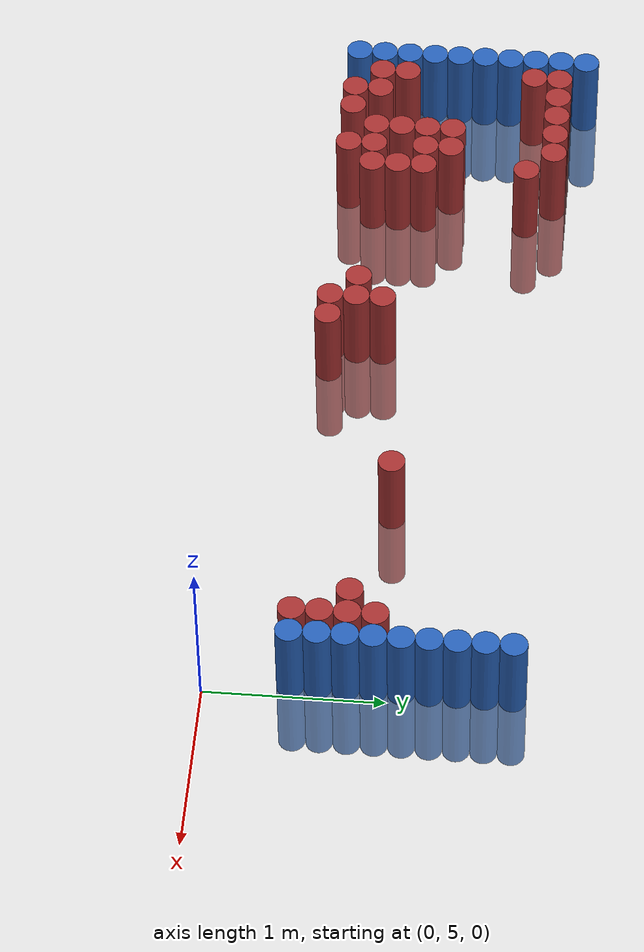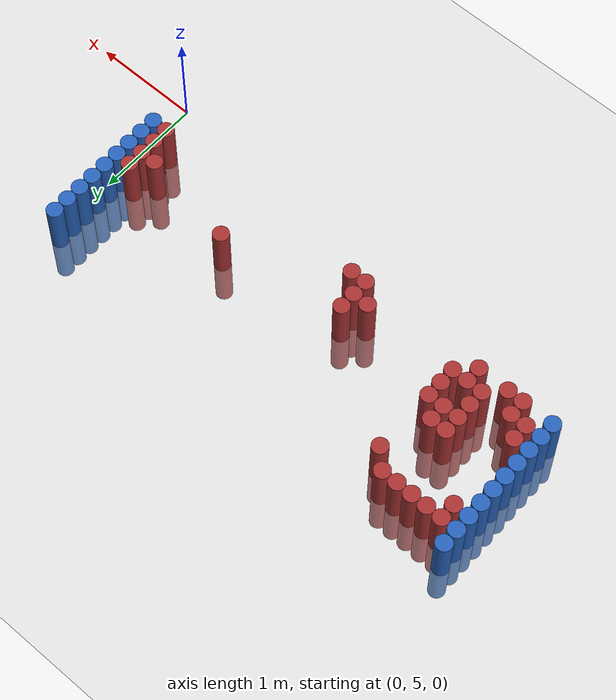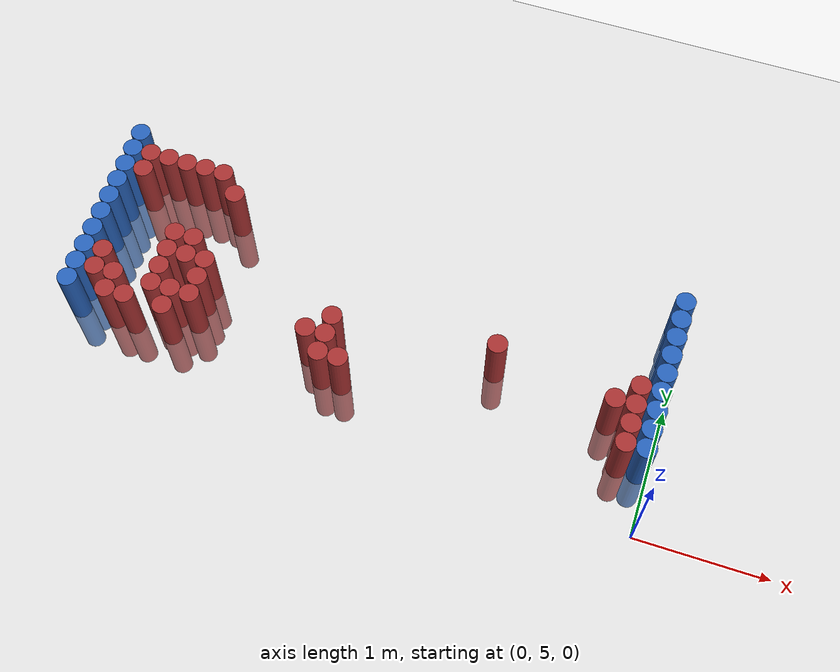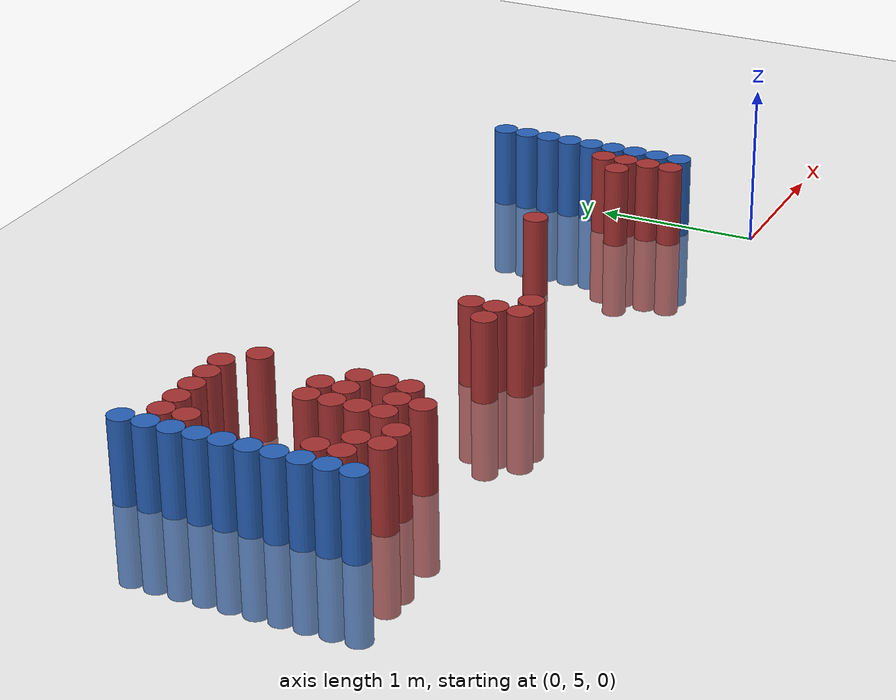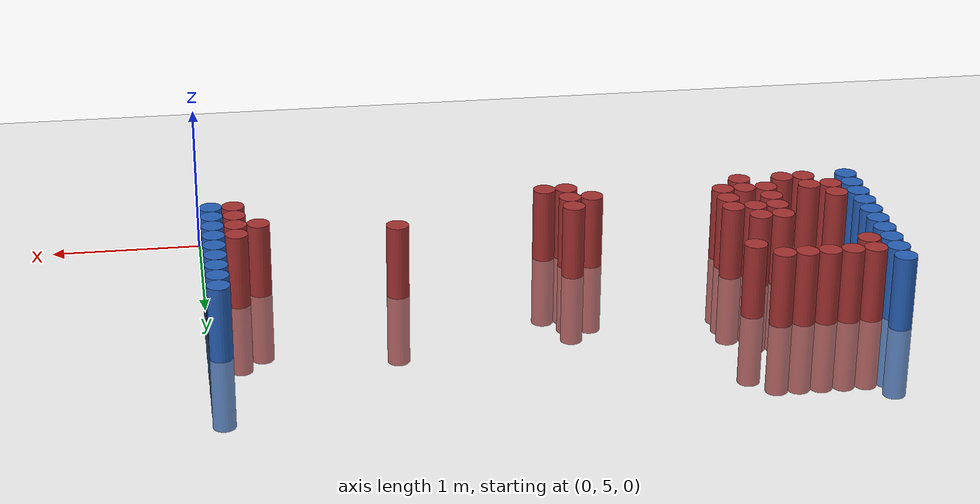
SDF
<sdf version="1.6">
 <world name="default">
  <model name="ground_plane">
   <static>1</static>
   <link name="link">
    <collision name="collision">
     <geometry><plane><normal>0 0 1</normal><size>100 100</size></plane></geometry>
     <surface><friction><ode><mu>100</mu><mu2>50</mu2></ode></friction></surface>
    </collision>
    <visual name="visual">
     <cast_shadows>0</cast_shadows>
     <geometry><plane><normal>0 0 1</normal><size>100 100</size></plane></geometry>
     <material>
      <script><uri>file://media/materials/scripts/gazebo.material</uri><name>Gazebo/Grey</name></script>
     </material>
    </visual>
   </link>
  </model>
  <model name="unit_cylinder_98">
   <static>1</static>
   <pose>-4.425000 5.475000 0.000000 0.000000 0.000000 0.000000</pose>
   <link name="link">
    <inertial>
     <mass>1</mass>
     <inertia><ixx>0.145833</ixx><ixy>0</ixy><ixz>0</ixz><iyy>0.145833</iyy><iyz>0</iyz><izz>0.125</izz></inertia>
    </inertial>
    <collision name="collision">
     <geometry><cylinder><radius>0.075000</radius><length>1</length></cylinder></geometry>
    </collision>
    <visual name="visual">
     <geometry><cylinder><radius>0.075000</radius><length>1</length></cylinder></geometry>
     <material>
      <ambient>0.152000 0.379000 0.720000 1</ambient>
      <diffuse>0.152000 0.379000 0.720000 1</diffuse>
     </material>
     <material>
      <script><name>Gazebo/Grey</name><uri>file://media/materials/scripts/gazebo.material</uri></script>
     </material>
    </visual>
   </link>
  </model>
  <model name="unit_cylinder_99">
   <static>1</static>
   <pose>-4.425000 5.625000 0.000000 0.000000 0.000000 0.000000</pose>
   <link name="link">
    <inertial>
     <mass>1</mass>
     <inertia><ixx>0.145833</ixx><ixy>0</ixy><ixz>0</ixz><iyy>0.145833</iyy><iyz>0</iyz><izz>0.125</izz></inertia>
    </inertial>
    <collision name="collision">
     <geometry><cylinder><radius>0.075000</radius><length>1</length></cylinder></geometry>
    </collision>
    <visual name="visual">
     <geometry><cylinder><radius>0.075000</radius><length>1</length></cylinder></geometry>
     <material>
      <ambient>0.152000 0.379000 0.720000 1</ambient>
      <diffuse>0.152000 0.379000 0.720000 1</diffuse>
     </material>
     <material>
      <script><name>Gazebo/Grey</name><uri>file://media/materials/scripts/gazebo.material</uri></script>
     </material>
    </visual>
   </link>
  </model>
  <model name="unit_cylinder_100">
   <static>1</static>
   <pose>-4.425000 5.775000 0.000000 0.000000 0.000000 0.000000</pose>
   <link name="link">
    <inertial>
     <mass>1</mass>
     <inertia><ixx>0.145833</ixx><ixy>0</ixy><ixz>0</ixz><iyy>0.145833</iyy><iyz>0</iyz><izz>0.125</izz></inertia>
    </inertial>
    <collision name="collision">
     <geometry><cylinder><radius>0.075000</radius><length>1</length></cylinder></geometry>
    </collision>
    <visual name="visual">
     <geometry><cylinder><radius>0.075000</radius><length>1</length></cylinder></geometry>
     <material>
      <ambient>0.152000 0.379000 0.720000 1</ambient>
      <diffuse>0.152000 0.379000 0.720000 1</diffuse>
     </material>
     <material>
      <script><name>Gazebo/Grey</name><uri>file://media/materials/scripts/gazebo.material</uri></script>
     </material>
    </visual>
   </link>
  </model>
  <model name="unit_cylinder_101">
   <static>1</static>
   <pose>-4.425000 5.925000 0.000000 0.000000 0.000000 0.000000</pose>
   <link name="link">
    <inertial>
     <mass>1</mass>
     <inertia><ixx>0.145833</ixx><ixy>0</ixy><ixz>0</ixz><iyy>0.145833</iyy><iyz>0</iyz><izz>0.125</izz></inertia>
    </inertial>
    <collision name="collision">
     <geometry><cylinder><radius>0.075000</radius><length>1</length></cylinder></geometry>
    </collision>
    <visual name="visual">
     <geometry><cylinder><radius>0.075000</radius><length>1</length></cylinder></geometry>
     <material>
      <ambient>0.152000 0.379000 0.720000 1</ambient>
      <diffuse>0.152000 0.379000 0.720000 1</diffuse>
     </material>
     <material>
      <script><name>Gazebo/Grey</name><uri>file://media/materials/scripts/gazebo.material</uri></script>
     </material>
    </visual>
   </link>
  </model>
  <model name="unit_cylinder_102">
   <static>1</static>
   <pose>-4.425000 6.075000 0.000000 0.000000 0.000000 0.000000</pose>
   <link name="link">
    <inertial>
     <mass>1</mass>
     <inertia><ixx>0.145833</ixx><ixy>0</ixy><ixz>0</ixz><iyy>0.145833</iyy><iyz>0</iyz><izz>0.125</izz></inertia>
    </inertial>
    <collision name="collision">
     <geometry><cylinder><radius>0.075000</radius><length>1</length></cylinder></geometry>
    </collision>
    <visual name="visual">
     <geometry><cylinder><radius>0.075000</radius><length>1</length></cylinder></geometry>
     <material>
      <ambient>0.152000 0.379000 0.720000 1</ambient>
      <diffuse>0.152000 0.379000 0.720000 1</diffuse>
     </material>
     <material>
      <script><name>Gazebo/Grey</name><uri>file://media/materials/scripts/gazebo.material</uri></script>
     </material>
    </visual>
   </link>
  </model>
  <model name="unit_cylinder_103">
   <static>1</static>
   <pose>-4.425000 6.225000 0.000000 0.000000 0.000000 0.000000</pose>
   <link name="link">
    <inertial>
     <mass>1</mass>
     <inertia><ixx>0.145833</ixx><ixy>0</ixy><ixz>0</ixz><iyy>0.145833</iyy><iyz>0</iyz><izz>0.125</izz></inertia>
    </inertial>
    <collision name="collision">
     <geometry><cylinder><radius>0.075000</radius><length>1</length></cylinder></geometry>
    </collision>
    <visual name="visual">
     <geometry><cylinder><radius>0.075000</radius><length>1</length></cylinder></geometry>
     <material>
      <ambient>0.152000 0.379000 0.720000 1</ambient>
      <diffuse>0.152000 0.379000 0.720000 1</diffuse>
     </material>
     <material>
      <script><name>Gazebo/Grey</name><uri>file://media/materials/scripts/gazebo.material</uri></script>
     </material>
    </visual>
   </link>
  </model>
  <model name="unit_cylinder_104">
   <static>1</static>
   <pose>-4.425000 6.375000 0.000000 0.000000 0.000000 0.000000</pose>
   <link name="link">
    <inertial>
     <mass>1</mass>
     <inertia><ixx>0.145833</ixx><ixy>0</ixy><ixz>0</ixz><iyy>0.145833</iyy><iyz>0</iyz><izz>0.125</izz></inertia>
    </inertial>
    <collision name="collision">
     <geometry><cylinder><radius>0.075000</radius><length>1</length></cylinder></geometry>
    </collision>
    <visual name="visual">
     <geometry><cylinder><radius>0.075000</radius><length>1</length></cylinder></geometry>
     <material>
      <ambient>0.152000 0.379000 0.720000 1</ambient>
      <diffuse>0.152000 0.379000 0.720000 1</diffuse>
     </material>
     <material>
      <script><name>Gazebo/Grey</name><uri>file://media/materials/scripts/gazebo.material</uri></script>
     </material>
    </visual>
   </link>
  </model>
  <model name="unit_cylinder_105">
   <static>1</static>
   <pose>-4.425000 6.525000 0.000000 0.000000 0.000000 0.000000</pose>
   <link name="link">
    <inertial>
     <mass>1</mass>
     <inertia><ixx>0.145833</ixx><ixy>0</ixy><ixz>0</ixz><iyy>0.145833</iyy><iyz>0</iyz><izz>0.125</izz></inertia>
    </inertial>
    <collision name="collision">
     <geometry><cylinder><radius>0.075000</radius><length>1</length></cylinder></geometry>
    </collision>
    <visual name="visual">
     <geometry><cylinder><radius>0.075000</radius><length>1</length></cylinder></geometry>
     <material>
      <ambient>0.152000 0.379000 0.720000 1</ambient>
      <diffuse>0.152000 0.379000 0.720000 1</diffuse>
     </material>
     <material>
      <script><name>Gazebo/Grey</name><uri>file://media/materials/scripts/gazebo.material</uri></script>
     </material>
    </visual>
   </link>
  </model>
  <model name="unit_cylinder_106">
   <static>1</static>
   <pose>-4.425000 6.675000 0.000000 0.000000 0.000000 0.000000</pose>
   <link name="link">
    <inertial>
     <mass>1</mass>
     <inertia><ixx>0.145833</ixx><ixy>0</ixy><ixz>0</ixz><iyy>0.145833</iyy><iyz>0</iyz><izz>0.125</izz></inertia>
    </inertial>
    <collision name="collision">
     <geometry><cylinder><radius>0.075000</radius><length>1</length></cylinder></geometry>
    </collision>
    <visual name="visual">
     <geometry><cylinder><radius>0.075000</radius><length>1</length></cylinder></geometry>
     <material>
      <ambient>0.152000 0.379000 0.720000 1</ambient>
      <diffuse>0.152000 0.379000 0.720000 1</diffuse>
     </material>
     <material>
      <script><name>Gazebo/Grey</name><uri>file://media/materials/scripts/gazebo.material</uri></script>
     </material>
    </visual>
   </link>
  </model>
  <model name="unit_cylinder_107">
   <static>1</static>
   <pose>-4.425000 6.825000 0.000000 0.000000 0.000000 0.000000</pose>
   <link name="link">
    <inertial>
     <mass>1</mass>
     <inertia><ixx>0.145833</ixx><ixy>0</ixy><ixz>0</ixz><iyy>0.145833</iyy><iyz>0</iyz><izz>0.125</izz></inertia>
    </inertial>
    <collision name="collision">
     <geometry><cylinder><radius>0.075000</radius><length>1</length></cylinder></geometry>
    </collision>
    <visual name="visual">
     <geometry><cylinder><radius>0.075000</radius><length>1</length></cylinder></geometry>
     <material>
      <ambient>0.152000 0.379000 0.720000 1</ambient>
      <diffuse>0.152000 0.379000 0.720000 1</diffuse>
     </material>
     <material>
      <script><name>Gazebo/Grey</name><uri>file://media/materials/scripts/gazebo.material</uri></script>
     </material>
    </visual>
   </link>
  </model>
  <model name="unit_cylinder_128">
   <static>1</static>
   <pose>-4.275000 5.625000 0.000000 0.000000 0.000000 0.000000</pose>
   <link name="link">
    <inertial>
     <mass>1</mass>
     <inertia><ixx>0.145833</ixx><ixy>0</ixy><ixz>0</ixz><iyy>0.145833</iyy><iyz>0</iyz><izz>0.125</izz></inertia>
    </inertial>
    <collision name="collision">
     <geometry><cylinder><radius>0.075000</radius><length>1</length></cylinder></geometry>
    </collision>
    <visual name="visual">
     <geometry><cylinder><radius>0.075000</radius><length>1</length></cylinder></geometry>
     <material>
      <ambient>0.648000 0.192000 0.192000 1</ambient>
      <diffuse>0.648000 0.192000 0.192000 1</diffuse>
     </material>
     <material>
      <script><name>Gazebo/Grey</name><uri>file://media/materials/scripts/gazebo.material</uri></script>
     </material>
    </visual>
   </link>
  </model>
  <model name="unit_cylinder_129">
   <static>1</static>
   <pose>-4.275000 5.775000 0.000000 0.000000 0.000000 0.000000</pose>
   <link name="link">
    <inertial>
     <mass>1</mass>
     <inertia><ixx>0.145833</ixx><ixy>0</ixy><ixz>0</ixz><iyy>0.145833</iyy><iyz>0</iyz><izz>0.125</izz></inertia>
    </inertial>
    <collision name="collision">
     <geometry><cylinder><radius>0.075000</radius><length>1</length></cylinder></geometry>
    </collision>
    <visual name="visual">
     <geometry><cylinder><radius>0.075000</radius><length>1</length></cylinder></geometry>
     <material>
      <ambient>0.648000 0.192000 0.192000 1</ambient>
      <diffuse>0.648000 0.192000 0.192000 1</diffuse>
     </material>
     <material>
      <script><name>Gazebo/Grey</name><uri>file://media/materials/scripts/gazebo.material</uri></script>
     </material>
    </visual>
   </link>
  </model>
  <model name="unit_cylinder_130">
   <static>1</static>
   <pose>-4.275000 6.525000 0.000000 0.000000 0.000000 0.000000</pose>
   <link name="link">
    <inertial>
     <mass>1</mass>
     <inertia><ixx>0.145833</ixx><ixy>0</ixy><ixz>0</ixz><iyy>0.145833</iyy><iyz>0</iyz><izz>0.125</izz></inertia>
    </inertial>
    <collision name="collision">
     <geometry><cylinder><radius>0.075000</radius><length>1</length></cylinder></geometry>
    </collision>
    <visual name="visual">
     <geometry><cylinder><radius>0.075000</radius><length>1</length></cylinder></geometry>
     <material>
      <ambient>0.648000 0.192000 0.192000 1</ambient>
      <diffuse>0.648000 0.192000 0.192000 1</diffuse>
     </material>
     <material>
      <script><name>Gazebo/Grey</name><uri>file://media/materials/scripts/gazebo.material</uri></script>
     </material>
    </visual>
   </link>
  </model>
  <model name="unit_cylinder_131">
   <static>1</static>
   <pose>-4.275000 6.675000 0.000000 0.000000 0.000000 0.000000</pose>
   <link name="link">
    <inertial>
     <mass>1</mass>
     <inertia><ixx>0.145833</ixx><ixy>0</ixy><ixz>0</ixz><iyy>0.145833</iyy><iyz>0</iyz><izz>0.125</izz></inertia>
    </inertial>
    <collision name="collision">
     <geometry><cylinder><radius>0.075000</radius><length>1</length></cylinder></geometry>
    </collision>
    <visual name="visual">
     <geometry><cylinder><radius>0.075000</radius><length>1</length></cylinder></geometry>
     <material>
      <ambient>0.648000 0.192000 0.192000 1</ambient>
      <diffuse>0.648000 0.192000 0.192000 1</diffuse>
     </material>
     <material>
      <script><name>Gazebo/Grey</name><uri>file://media/materials/scripts/gazebo.material</uri></script>
     </material>
    </visual>
   </link>
  </model>
  <model name="unit_cylinder_143">
   <static>1</static>
   <pose>-4.125000 5.475000 0.000000 0.000000 0.000000 0.000000</pose>
   <link name="link">
    <inertial>
     <mass>1</mass>
     <inertia><ixx>0.145833</ixx><ixy>0</ixy><ixz>0</ixz><iyy>0.145833</iyy><iyz>0</iyz><izz>0.125</izz></inertia>
    </inertial>
    <collision name="collision">
     <geometry><cylinder><radius>0.075000</radius><length>1</length></cylinder></geometry>
    </collision>
    <visual name="visual">
     <geometry><cylinder><radius>0.075000</radius><length>1</length></cylinder></geometry>
     <material>
      <ambient>0.648000 0.192000 0.192000 1</ambient>
      <diffuse>0.648000 0.192000 0.192000 1</diffuse>
     </material>
     <material>
      <script><name>Gazebo/Grey</name><uri>file://media/materials/scripts/gazebo.material</uri></script>
     </material>
    </visual>
   </link>
  </model>
  <model name="unit_cylinder_144">
   <static>1</static>
   <pose>-4.125000 5.625000 0.000000 0.000000 0.000000 0.000000</pose>
   <link name="link">
    <inertial>
     <mass>1</mass>
     <inertia><ixx>0.145833</ixx><ixy>0</ixy><ixz>0</ixz><iyy>0.145833</iyy><iyz>0</iyz><izz>0.125</izz></inertia>
    </inertial>
    <collision name="collision">
     <geometry><cylinder><radius>0.075000</radius><length>1</length></cylinder></geometry>
    </collision>
    <visual name="visual">
     <geometry><cylinder><radius>0.075000</radius><length>1</length></cylinder></geometry>
     <material>
      <ambient>0.648000 0.192000 0.192000 1</ambient>
      <diffuse>0.648000 0.192000 0.192000 1</diffuse>
     </material>
     <material>
      <script><name>Gazebo/Grey</name><uri>file://media/materials/scripts/gazebo.material</uri></script>
     </material>
    </visual>
   </link>
  </model>
  <model name="unit_cylinder_145">
   <static>1</static>
   <pose>-4.125000 6.675000 0.000000 0.000000 0.000000 0.000000</pose>
   <link name="link">
    <inertial>
     <mass>1</mass>
     <inertia><ixx>0.145833</ixx><ixy>0</ixy><ixz>0</ixz><iyy>0.145833</iyy><iyz>0</iyz><izz>0.125</izz></inertia>
    </inertial>
    <collision name="collision">
     <geometry><cylinder><radius>0.075000</radius><length>1</length></cylinder></geometry>
    </collision>
    <visual name="visual">
     <geometry><cylinder><radius>0.075000</radius><length>1</length></cylinder></geometry>
     <material>
      <ambient>0.648000 0.192000 0.192000 1</ambient>
      <diffuse>0.648000 0.192000 0.192000 1</diffuse>
     </material>
     <material>
      <script><name>Gazebo/Grey</name><uri>file://media/materials/scripts/gazebo.material</uri></script>
     </material>
    </visual>
   </link>
  </model>
  <model name="unit_cylinder_153">
   <static>1</static>
   <pose>-3.975000 5.475000 0.000000 0.000000 0.000000 0.000000</pose>
   <link name="link">
    <inertial>
     <mass>1</mass>
     <inertia><ixx>0.145833</ixx><ixy>0</ixy><ixz>0</ixz><iyy>0.145833</iyy><iyz>0</iyz><izz>0.125</izz></inertia>
    </inertial>
    <collision name="collision">
     <geometry><cylinder><radius>0.075000</radius><length>1</length></cylinder></geometry>
    </collision>
    <visual name="visual">
     <geometry><cylinder><radius>0.075000</radius><length>1</length></cylinder></geometry>
     <material>
      <ambient>0.648000 0.192000 0.192000 1</ambient>
      <diffuse>0.648000 0.192000 0.192000 1</diffuse>
     </material>
     <material>
      <script><name>Gazebo/Grey</name><uri>file://media/materials/scripts/gazebo.material</uri></script>
     </material>
    </visual>
   </link>
  </model>
  <model name="unit_cylinder_154">
   <static>1</static>
   <pose>-3.975000 6.675000 0.000000 0.000000 0.000000 0.000000</pose>
   <link name="link">
    <inertial>
     <mass>1</mass>
     <inertia><ixx>0.145833</ixx><ixy>0</ixy><ixz>0</ixz><iyy>0.145833</iyy><iyz>0</iyz><izz>0.125</izz></inertia>
    </inertial>
    <collision name="collision">
     <geometry><cylinder><radius>0.075000</radius><length>1</length></cylinder></geometry>
    </collision>
    <visual name="visual">
     <geometry><cylinder><radius>0.075000</radius><length>1</length></cylinder></geometry>
     <material>
      <ambient>0.648000 0.192000 0.192000 1</ambient>
      <diffuse>0.648000 0.192000 0.192000 1</diffuse>
     </material>
     <material>
      <script><name>Gazebo/Grey</name><uri>file://media/materials/scripts/gazebo.material</uri></script>
     </material>
    </visual>
   </link>
  </model>
  <model name="unit_cylinder_163">
   <static>1</static>
   <pose>-3.825000 5.625000 0.000000 0.000000 0.000000 0.000000</pose>
   <link name="link">
    <inertial>
     <mass>1</mass>
     <inertia><ixx>0.145833</ixx><ixy>0</ixy><ixz>0</ixz><iyy>0.145833</iyy><iyz>0</iyz><izz>0.125</izz></inertia>
    </inertial>
    <collision name="collision">
     <geometry><cylinder><radius>0.075000</radius><length>1</length></cylinder></geometry>
    </collision>
    <visual name="visual">
     <geometry><cylinder><radius>0.075000</radius><length>1</length></cylinder></geometry>
     <material>
      <ambient>0.648000 0.192000 0.192000 1</ambient>
      <diffuse>0.648000 0.192000 0.192000 1</diffuse>
     </material>
     <material>
      <script><name>Gazebo/Grey</name><uri>file://media/materials/scripts/gazebo.material</uri></script>
     </material>
    </visual>
   </link>
  </model>
  <model name="unit_cylinder_164">
   <static>1</static>
   <pose>-3.825000 5.775000 0.000000 0.000000 0.000000 0.000000</pose>
   <link name="link">
    <inertial>
     <mass>1</mass>
     <inertia><ixx>0.145833</ixx><ixy>0</ixy><ixz>0</ixz><iyy>0.145833</iyy><iyz>0</iyz><izz>0.125</izz></inertia>
    </inertial>
    <collision name="collision">
     <geometry><cylinder><radius>0.075000</radius><length>1</length></cylinder></geometry>
    </collision>
    <visual name="visual">
     <geometry><cylinder><radius>0.075000</radius><length>1</length></cylinder></geometry>
     <material>
      <ambient>0.648000 0.192000 0.192000 1</ambient>
      <diffuse>0.648000 0.192000 0.192000 1</diffuse>
     </material>
     <material>
      <script><name>Gazebo/Grey</name><uri>file://media/materials/scripts/gazebo.material</uri></script>
     </material>
    </visual>
   </link>
  </model>
  <model name="unit_cylinder_165">
   <static>1</static>
   <pose>-3.825000 5.925000 0.000000 0.000000 0.000000 0.000000</pose>
   <link name="link">
    <inertial>
     <mass>1</mass>
     <inertia><ixx>0.145833</ixx><ixy>0</ixy><ixz>0</ixz><iyy>0.145833</iyy><iyz>0</iyz><izz>0.125</izz></inertia>
    </inertial>
    <collision name="collision">
     <geometry><cylinder><radius>0.075000</radius><length>1</length></cylinder></geometry>
    </collision>
    <visual name="visual">
     <geometry><cylinder><radius>0.075000</radius><length>1</length></cylinder></geometry>
     <material>
      <ambient>0.648000 0.192000 0.192000 1</ambient>
      <diffuse>0.648000 0.192000 0.192000 1</diffuse>
     </material>
     <material>
      <script><name>Gazebo/Grey</name><uri>file://media/materials/scripts/gazebo.material</uri></script>
     </material>
    </visual>
   </link>
  </model>
  <model name="unit_cylinder_166">
   <static>1</static>
   <pose>-3.825000 6.075000 0.000000 0.000000 0.000000 0.000000</pose>
   <link name="link">
    <inertial>
     <mass>1</mass>
     <inertia><ixx>0.145833</ixx><ixy>0</ixy><ixz>0</ixz><iyy>0.145833</iyy><iyz>0</iyz><izz>0.125</izz></inertia>
    </inertial>
    <collision name="collision">
     <geometry><cylinder><radius>0.075000</radius><length>1</length></cylinder></geometry>
    </collision>
    <visual name="visual">
     <geometry><cylinder><radius>0.075000</radius><length>1</length></cylinder></geometry>
     <material>
      <ambient>0.648000 0.192000 0.192000 1</ambient>
      <diffuse>0.648000 0.192000 0.192000 1</diffuse>
     </material>
     <material>
      <script><name>Gazebo/Grey</name><uri>file://media/materials/scripts/gazebo.material</uri></script>
     </material>
    </visual>
   </link>
  </model>
  <model name="unit_cylinder_167">
   <static>1</static>
   <pose>-3.825000 6.675000 0.000000 0.000000 0.000000 0.000000</pose>
   <link name="link">
    <inertial>
     <mass>1</mass>
     <inertia><ixx>0.145833</ixx><ixy>0</ixy><ixz>0</ixz><iyy>0.145833</iyy><iyz>0</iyz><izz>0.125</izz></inertia>
    </inertial>
    <collision name="collision">
     <geometry><cylinder><radius>0.075000</radius><length>1</length></cylinder></geometry>
    </collision>
    <visual name="visual">
     <geometry><cylinder><radius>0.075000</radius><length>1</length></cylinder></geometry>
     <material>
      <ambient>0.648000 0.192000 0.192000 1</ambient>
      <diffuse>0.648000 0.192000 0.192000 1</diffuse>
     </material>
     <material>
      <script><name>Gazebo/Grey</name><uri>file://media/materials/scripts/gazebo.material</uri></script>
     </material>
    </visual>
   </link>
  </model>
  <model name="unit_cylinder_175">
   <static>1</static>
   <pose>-3.675000 5.475000 0.000000 0.000000 0.000000 0.000000</pose>
   <link name="link">
    <inertial>
     <mass>1</mass>
     <inertia><ixx>0.145833</ixx><ixy>0</ixy><ixz>0</ixz><iyy>0.145833</iyy><iyz>0</iyz><izz>0.125</izz></inertia>
    </inertial>
    <collision name="collision">
     <geometry><cylinder><radius>0.075000</radius><length>1</length></cylinder></geometry>
    </collision>
    <visual name="visual">
     <geometry><cylinder><radius>0.075000</radius><length>1</length></cylinder></geometry>
     <material>
      <ambient>0.648000 0.192000 0.192000 1</ambient>
      <diffuse>0.648000 0.192000 0.192000 1</diffuse>
     </material>
     <material>
      <script><name>Gazebo/Grey</name><uri>file://media/materials/scripts/gazebo.material</uri></script>
     </material>
    </visual>
   </link>
  </model>
  <model name="unit_cylinder_176">
   <static>1</static>
   <pose>-3.675000 5.625000 0.000000 0.000000 0.000000 0.000000</pose>
   <link name="link">
    <inertial>
     <mass>1</mass>
     <inertia><ixx>0.145833</ixx><ixy>0</ixy><ixz>0</ixz><iyy>0.145833</iyy><iyz>0</iyz><izz>0.125</izz></inertia>
    </inertial>
    <collision name="collision">
     <geometry><cylinder><radius>0.075000</radius><length>1</length></cylinder></geometry>
    </collision>
    <visual name="visual">
     <geometry><cylinder><radius>0.075000</radius><length>1</length></cylinder></geometry>
     <material>
      <ambient>0.648000 0.192000 0.192000 1</ambient>
      <diffuse>0.648000 0.192000 0.192000 1</diffuse>
     </material>
     <material>
      <script><name>Gazebo/Grey</name><uri>file://media/materials/scripts/gazebo.material</uri></script>
     </material>
    </visual>
   </link>
  </model>
  <model name="unit_cylinder_177">
   <static>1</static>
   <pose>-3.675000 5.925000 0.000000 0.000000 0.000000 0.000000</pose>
   <link name="link">
    <inertial>
     <mass>1</mass>
     <inertia><ixx>0.145833</ixx><ixy>0</ixy><ixz>0</ixz><iyy>0.145833</iyy><iyz>0</iyz><izz>0.125</izz></inertia>
    </inertial>
    <collision name="collision">
     <geometry><cylinder><radius>0.075000</radius><length>1</length></cylinder></geometry>
    </collision>
    <visual name="visual">
     <geometry><cylinder><radius>0.075000</radius><length>1</length></cylinder></geometry>
     <material>
      <ambient>0.648000 0.192000 0.192000 1</ambient>
      <diffuse>0.648000 0.192000 0.192000 1</diffuse>
     </material>
     <material>
      <script><name>Gazebo/Grey</name><uri>file://media/materials/scripts/gazebo.material</uri></script>
     </material>
    </visual>
   </link>
  </model>
  <model name="unit_cylinder_178">
   <static>1</static>
   <pose>-3.675000 6.075000 0.000000 0.000000 0.000000 0.000000</pose>
   <link name="link">
    <inertial>
     <mass>1</mass>
     <inertia><ixx>0.145833</ixx><ixy>0</ixy><ixz>0</ixz><iyy>0.145833</iyy><iyz>0</iyz><izz>0.125</izz></inertia>
    </inertial>
    <collision name="collision">
     <geometry><cylinder><radius>0.075000</radius><length>1</length></cylinder></geometry>
    </collision>
    <visual name="visual">
     <geometry><cylinder><radius>0.075000</radius><length>1</length></cylinder></geometry>
     <material>
      <ambient>0.648000 0.192000 0.192000 1</ambient>
      <diffuse>0.648000 0.192000 0.192000 1</diffuse>
     </material>
     <material>
      <script><name>Gazebo/Grey</name><uri>file://media/materials/scripts/gazebo.material</uri></script>
     </material>
    </visual>
   </link>
  </model>
  <model name="unit_cylinder_179">
   <static>1</static>
   <pose>-3.675000 6.675000 0.000000 0.000000 0.000000 0.000000</pose>
   <link name="link">
    <inertial>
     <mass>1</mass>
     <inertia><ixx>0.145833</ixx><ixy>0</ixy><ixz>0</ixz><iyy>0.145833</iyy><iyz>0</iyz><izz>0.125</izz></inertia>
    </inertial>
    <collision name="collision">
     <geometry><cylinder><radius>0.075000</radius><length>1</length></cylinder></geometry>
    </collision>
    <visual name="visual">
     <geometry><cylinder><radius>0.075000</radius><length>1</length></cylinder></geometry>
     <material>
      <ambient>0.648000 0.192000 0.192000 1</ambient>
      <diffuse>0.648000 0.192000 0.192000 1</diffuse>
     </material>
     <material>
      <script><name>Gazebo/Grey</name><uri>file://media/materials/scripts/gazebo.material</uri></script>
     </material>
    </visual>
   </link>
  </model>
  <model name="unit_cylinder_189">
   <static>1</static>
   <pose>-3.525000 5.625000 0.000000 0.000000 0.000000 0.000000</pose>
   <link name="link">
    <inertial>
     <mass>1</mass>
     <inertia><ixx>0.145833</ixx><ixy>0</ixy><ixz>0</ixz><iyy>0.145833</iyy><iyz>0</iyz><izz>0.125</izz></inertia>
    </inertial>
    <collision name="collision">
     <geometry><cylinder><radius>0.075000</radius><length>1</length></cylinder></geometry>
    </collision>
    <visual name="visual">
     <geometry><cylinder><radius>0.075000</radius><length>1</length></cylinder></geometry>
     <material>
      <ambient>0.648000 0.192000 0.192000 1</ambient>
      <diffuse>0.648000 0.192000 0.192000 1</diffuse>
     </material>
     <material>
      <script><name>Gazebo/Grey</name><uri>file://media/materials/scripts/gazebo.material</uri></script>
     </material>
    </visual>
   </link>
  </model>
  <model name="unit_cylinder_190">
   <static>1</static>
   <pose>-3.525000 5.775000 0.000000 0.000000 0.000000 0.000000</pose>
   <link name="link">
    <inertial>
     <mass>1</mass>
     <inertia><ixx>0.145833</ixx><ixy>0</ixy><ixz>0</ixz><iyy>0.145833</iyy><iyz>0</iyz><izz>0.125</izz></inertia>
    </inertial>
    <collision name="collision">
     <geometry><cylinder><radius>0.075000</radius><length>1</length></cylinder></geometry>
    </collision>
    <visual name="visual">
     <geometry><cylinder><radius>0.075000</radius><length>1</length></cylinder></geometry>
     <material>
      <ambient>0.648000 0.192000 0.192000 1</ambient>
      <diffuse>0.648000 0.192000 0.192000 1</diffuse>
     </material>
     <material>
      <script><name>Gazebo/Grey</name><uri>file://media/materials/scripts/gazebo.material</uri></script>
     </material>
    </visual>
   </link>
  </model>
  <model name="unit_cylinder_191">
   <static>1</static>
   <pose>-3.525000 5.925000 0.000000 0.000000 0.000000 0.000000</pose>
   <link name="link">
    <inertial>
     <mass>1</mass>
     <inertia><ixx>0.145833</ixx><ixy>0</ixy><ixz>0</ixz><iyy>0.145833</iyy><iyz>0</iyz><izz>0.125</izz></inertia>
    </inertial>
    <collision name="collision">
     <geometry><cylinder><radius>0.075000</radius><length>1</length></cylinder></geometry>
    </collision>
    <visual name="visual">
     <geometry><cylinder><radius>0.075000</radius><length>1</length></cylinder></geometry>
     <material>
      <ambient>0.648000 0.192000 0.192000 1</ambient>
      <diffuse>0.648000 0.192000 0.192000 1</diffuse>
     </material>
     <material>
      <script><name>Gazebo/Grey</name><uri>file://media/materials/scripts/gazebo.material</uri></script>
     </material>
    </visual>
   </link>
  </model>
  <model name="unit_cylinder_192">
   <static>1</static>
   <pose>-3.525000 6.525000 0.000000 0.000000 0.000000 0.000000</pose>
   <link name="link">
    <inertial>
     <mass>1</mass>
     <inertia><ixx>0.145833</ixx><ixy>0</ixy><ixz>0</ixz><iyy>0.145833</iyy><iyz>0</iyz><izz>0.125</izz></inertia>
    </inertial>
    <collision name="collision">
     <geometry><cylinder><radius>0.075000</radius><length>1</length></cylinder></geometry>
    </collision>
    <visual name="visual">
     <geometry><cylinder><radius>0.075000</radius><length>1</length></cylinder></geometry>
     <material>
      <ambient>0.648000 0.192000 0.192000 1</ambient>
      <diffuse>0.648000 0.192000 0.192000 1</diffuse>
     </material>
     <material>
      <script><name>Gazebo/Grey</name><uri>file://media/materials/scripts/gazebo.material</uri></script>
     </material>
    </visual>
   </link>
  </model>
  <model name="unit_cylinder_214">
   <static>1</static>
   <pose>-2.625000 5.625000 0.000000 0.000000 0.000000 0.000000</pose>
   <link name="link">
    <inertial>
     <mass>1</mass>
     <inertia><ixx>0.145833</ixx><ixy>0</ixy><ixz>0</ixz><iyy>0.145833</iyy><iyz>0</iyz><izz>0.125</izz></inertia>
    </inertial>
    <collision name="collision">
     <geometry><cylinder><radius>0.075000</radius><length>1</length></cylinder></geometry>
    </collision>
    <visual name="visual">
     <geometry><cylinder><radius>0.075000</radius><length>1</length></cylinder></geometry>
     <material>
      <ambient>0.648000 0.192000 0.192000 1</ambient>
      <diffuse>0.648000 0.192000 0.192000 1</diffuse>
     </material>
     <material>
      <script><name>Gazebo/Grey</name><uri>file://media/materials/scripts/gazebo.material</uri></script>
     </material>
    </visual>
   </link>
  </model>
  <model name="unit_cylinder_215">
   <static>1</static>
   <pose>-2.475000 5.475000 0.000000 0.000000 0.000000 0.000000</pose>
   <link name="link">
    <inertial>
     <mass>1</mass>
     <inertia><ixx>0.145833</ixx><ixy>0</ixy><ixz>0</ixz><iyy>0.145833</iyy><iyz>0</iyz><izz>0.125</izz></inertia>
    </inertial>
    <collision name="collision">
     <geometry><cylinder><radius>0.075000</radius><length>1</length></cylinder></geometry>
    </collision>
    <visual name="visual">
     <geometry><cylinder><radius>0.075000</radius><length>1</length></cylinder></geometry>
     <material>
      <ambient>0.648000 0.192000 0.192000 1</ambient>
      <diffuse>0.648000 0.192000 0.192000 1</diffuse>
     </material>
     <material>
      <script><name>Gazebo/Grey</name><uri>file://media/materials/scripts/gazebo.material</uri></script>
     </material>
    </visual>
   </link>
  </model>
  <model name="unit_cylinder_216">
   <static>1</static>
   <pose>-2.475000 5.625000 0.000000 0.000000 0.000000 0.000000</pose>
   <link name="link">
    <inertial>
     <mass>1</mass>
     <inertia><ixx>0.145833</ixx><ixy>0</ixy><ixz>0</ixz><iyy>0.145833</iyy><iyz>0</iyz><izz>0.125</izz></inertia>
    </inertial>
    <collision name="collision">
     <geometry><cylinder><radius>0.075000</radius><length>1</length></cylinder></geometry>
    </collision>
    <visual name="visual">
     <geometry><cylinder><radius>0.075000</radius><length>1</length></cylinder></geometry>
     <material>
      <ambient>0.648000 0.192000 0.192000 1</ambient>
      <diffuse>0.648000 0.192000 0.192000 1</diffuse>
     </material>
     <material>
      <script><name>Gazebo/Grey</name><uri>file://media/materials/scripts/gazebo.material</uri></script>
     </material>
    </visual>
   </link>
  </model>
  <model name="unit_cylinder_217">
   <static>1</static>
   <pose>-2.475000 5.775000 0.000000 0.000000 0.000000 0.000000</pose>
   <link name="link">
    <inertial>
     <mass>1</mass>
     <inertia><ixx>0.145833</ixx><ixy>0</ixy><ixz>0</ixz><iyy>0.145833</iyy><iyz>0</iyz><izz>0.125</izz></inertia>
    </inertial>
    <collision name="collision">
     <geometry><cylinder><radius>0.075000</radius><length>1</length></cylinder></geometry>
    </collision>
    <visual name="visual">
     <geometry><cylinder><radius>0.075000</radius><length>1</length></cylinder></geometry>
     <material>
      <ambient>0.648000 0.192000 0.192000 1</ambient>
      <diffuse>0.648000 0.192000 0.192000 1</diffuse>
     </material>
     <material>
      <script><name>Gazebo/Grey</name><uri>file://media/materials/scripts/gazebo.material</uri></script>
     </material>
    </visual>
   </link>
  </model>
  <model name="unit_cylinder_222">
   <static>1</static>
   <pose>-2.325000 5.475000 0.000000 0.000000 0.000000 0.000000</pose>
   <link name="link">
    <inertial>
     <mass>1</mass>
     <inertia><ixx>0.145833</ixx><ixy>0</ixy><ixz>0</ixz><iyy>0.145833</iyy><iyz>0</iyz><izz>0.125</izz></inertia>
    </inertial>
    <collision name="collision">
     <geometry><cylinder><radius>0.075000</radius><length>1</length></cylinder></geometry>
    </collision>
    <visual name="visual">
     <geometry><cylinder><radius>0.075000</radius><length>1</length></cylinder></geometry>
     <material>
      <ambient>0.648000 0.192000 0.192000 1</ambient>
      <diffuse>0.648000 0.192000 0.192000 1</diffuse>
     </material>
     <material>
      <script><name>Gazebo/Grey</name><uri>file://media/materials/scripts/gazebo.material</uri></script>
     </material>
    </visual>
   </link>
  </model>
  <model name="unit_cylinder_245">
   <static>1</static>
   <pose>-1.275000 5.925000 0.000000 0.000000 0.000000 0.000000</pose>
   <link name="link">
    <inertial>
     <mass>1</mass>
     <inertia><ixx>0.145833</ixx><ixy>0</ixy><ixz>0</ixz><iyy>0.145833</iyy><iyz>0</iyz><izz>0.125</izz></inertia>
    </inertial>
    <collision name="collision">
     <geometry><cylinder><radius>0.075000</radius><length>1</length></cylinder></geometry>
    </collision>
    <visual name="visual">
     <geometry><cylinder><radius>0.075000</radius><length>1</length></cylinder></geometry>
     <material>
      <ambient>0.648000 0.192000 0.192000 1</ambient>
      <diffuse>0.648000 0.192000 0.192000 1</diffuse>
     </material>
     <material>
      <script><name>Gazebo/Grey</name><uri>file://media/materials/scripts/gazebo.material</uri></script>
     </material>
    </visual>
   </link>
  </model>
  <model name="unit_cylinder_274">
   <static>1</static>
   <pose>-0.375000 5.775000 0.000000 0.000000 0.000000 0.000000</pose>
   <link name="link">
    <inertial>
     <mass>1</mass>
     <inertia><ixx>0.145833</ixx><ixy>0</ixy><ixz>0</ixz><iyy>0.145833</iyy><iyz>0</iyz><izz>0.125</izz></inertia>
    </inertial>
    <collision name="collision">
     <geometry><cylinder><radius>0.075000</radius><length>1</length></cylinder></geometry>
    </collision>
    <visual name="visual">
     <geometry><cylinder><radius>0.075000</radius><length>1</length></cylinder></geometry>
     <material>
      <ambient>0.648000 0.192000 0.192000 1</ambient>
      <diffuse>0.648000 0.192000 0.192000 1</diffuse>
     </material>
     <material>
      <script><name>Gazebo/Grey</name><uri>file://media/materials/scripts/gazebo.material</uri></script>
     </material>
    </visual>
   </link>
  </model>
  <model name="unit_cylinder_277">
   <static>1</static>
   <pose>-0.225000 5.475000 0.000000 0.000000 0.000000 0.000000</pose>
   <link name="link">
    <inertial>
     <mass>1</mass>
     <inertia><ixx>0.145833</ixx><ixy>0</ixy><ixz>0</ixz><iyy>0.145833</iyy><iyz>0</iyz><izz>0.125</izz></inertia>
    </inertial>
    <collision name="collision">
     <geometry><cylinder><radius>0.075000</radius><length>1</length></cylinder></geometry>
    </collision>
    <visual name="visual">
     <geometry><cylinder><radius>0.075000</radius><length>1</length></cylinder></geometry>
     <material>
      <ambient>0.648000 0.192000 0.192000 1</ambient>
      <diffuse>0.648000 0.192000 0.192000 1</diffuse>
     </material>
     <material>
      <script><name>Gazebo/Grey</name><uri>file://media/materials/scripts/gazebo.material</uri></script>
     </material>
    </visual>
   </link>
  </model>
  <model name="unit_cylinder_278">
   <static>1</static>
   <pose>-0.225000 5.625000 0.000000 0.000000 0.000000 0.000000</pose>
   <link name="link">
    <inertial>
     <mass>1</mass>
     <inertia><ixx>0.145833</ixx><ixy>0</ixy><ixz>0</ixz><iyy>0.145833</iyy><iyz>0</iyz><izz>0.125</izz></inertia>
    </inertial>
    <collision name="collision">
     <geometry><cylinder><radius>0.075000</radius><length>1</length></cylinder></geometry>
    </collision>
    <visual name="visual">
     <geometry><cylinder><radius>0.075000</radius><length>1</length></cylinder></geometry>
     <material>
      <ambient>0.648000 0.192000 0.192000 1</ambient>
      <diffuse>0.648000 0.192000 0.192000 1</diffuse>
     </material>
     <material>
      <script><name>Gazebo/Grey</name><uri>file://media/materials/scripts/gazebo.material</uri></script>
     </material>
    </visual>
   </link>
  </model>
  <model name="unit_cylinder_279">
   <static>1</static>
   <pose>-0.225000 5.775000 0.000000 0.000000 0.000000 0.000000</pose>
   <link name="link">
    <inertial>
     <mass>1</mass>
     <inertia><ixx>0.145833</ixx><ixy>0</ixy><ixz>0</ixz><iyy>0.145833</iyy><iyz>0</iyz><izz>0.125</izz></inertia>
    </inertial>
    <collision name="collision">
     <geometry><cylinder><radius>0.075000</radius><length>1</length></cylinder></geometry>
    </collision>
    <visual name="visual">
     <geometry><cylinder><radius>0.075000</radius><length>1</length></cylinder></geometry>
     <material>
      <ambient>0.648000 0.192000 0.192000 1</ambient>
      <diffuse>0.648000 0.192000 0.192000 1</diffuse>
     </material>
     <material>
      <script><name>Gazebo/Grey</name><uri>file://media/materials/scripts/gazebo.material</uri></script>
     </material>
    </visual>
   </link>
  </model>
  <model name="unit_cylinder_280">
   <static>1</static>
   <pose>-0.225000 5.925000 0.000000 0.000000 0.000000 0.000000</pose>
   <link name="link">
    <inertial>
     <mass>1</mass>
     <inertia><ixx>0.145833</ixx><ixy>0</ixy><ixz>0</ixz><iyy>0.145833</iyy><iyz>0</iyz><izz>0.125</izz></inertia>
    </inertial>
    <collision name="collision">
     <geometry><cylinder><radius>0.075000</radius><length>1</length></cylinder></geometry>
    </collision>
    <visual name="visual">
     <geometry><cylinder><radius>0.075000</radius><length>1</length></cylinder></geometry>
     <material>
      <ambient>0.648000 0.192000 0.192000 1</ambient>
      <diffuse>0.648000 0.192000 0.192000 1</diffuse>
     </material>
     <material>
      <script><name>Gazebo/Grey</name><uri>file://media/materials/scripts/gazebo.material</uri></script>
     </material>
    </visual>
   </link>
  </model>
  <model name="unit_cylinder_293">
   <static>1</static>
   <pose>-0.075000 5.475000 0.000000 0.000000 0.000000 0.000000</pose>
   <link name="link">
    <inertial>
     <mass>1</mass>
     <inertia><ixx>0.145833</ixx><ixy>0</ixy><ixz>0</ixz><iyy>0.145833</iyy><iyz>0</iyz><izz>0.125</izz></inertia>
    </inertial>
    <collision name="collision">
     <geometry><cylinder><radius>0.075000</radius><length>1</length></cylinder></geometry>
    </collision>
    <visual name="visual">
     <geometry><cylinder><radius>0.075000</radius><length>1</length></cylinder></geometry>
     <material>
      <ambient>0.152000 0.379000 0.720000 1</ambient>
      <diffuse>0.152000 0.379000 0.720000 1</diffuse>
     </material>
     <material>
      <script><name>Gazebo/Grey</name><uri>file://media/materials/scripts/gazebo.material</uri></script>
     </material>
    </visual>
   </link>
  </model>
  <model name="unit_cylinder_294">
   <static>1</static>
   <pose>-0.075000 5.625000 0.000000 0.000000 0.000000 0.000000</pose>
   <link name="link">
    <inertial>
     <mass>1</mass>
     <inertia><ixx>0.145833</ixx><ixy>0</ixy><ixz>0</ixz><iyy>0.145833</iyy><iyz>0</iyz><izz>0.125</izz></inertia>
    </inertial>
    <collision name="collision">
     <geometry><cylinder><radius>0.075000</radius><length>1</length></cylinder></geometry>
    </collision>
    <visual name="visual">
     <geometry><cylinder><radius>0.075000</radius><length>1</length></cylinder></geometry>
     <material>
      <ambient>0.152000 0.379000 0.720000 1</ambient>
      <diffuse>0.152000 0.379000 0.720000 1</diffuse>
     </material>
     <material>
      <script><name>Gazebo/Grey</name><uri>file://media/materials/scripts/gazebo.material</uri></script>
     </material>
    </visual>
   </link>
  </model>
  <model name="unit_cylinder_295">
   <static>1</static>
   <pose>-0.075000 5.775000 0.000000 0.000000 0.000000 0.000000</pose>
   <link name="link">
    <inertial>
     <mass>1</mass>
     <inertia><ixx>0.145833</ixx><ixy>0</ixy><ixz>0</ixz><iyy>0.145833</iyy><iyz>0</iyz><izz>0.125</izz></inertia>
    </inertial>
    <collision name="collision">
     <geometry><cylinder><radius>0.075000</radius><length>1</length></cylinder></geometry>
    </collision>
    <visual name="visual">
     <geometry><cylinder><radius>0.075000</radius><length>1</length></cylinder></geometry>
     <material>
      <ambient>0.152000 0.379000 0.720000 1</ambient>
      <diffuse>0.152000 0.379000 0.720000 1</diffuse>
     </material>
     <material>
      <script><name>Gazebo/Grey</name><uri>file://media/materials/scripts/gazebo.material</uri></script>
     </material>
    </visual>
   </link>
  </model>
  <model name="unit_cylinder_296">
   <static>1</static>
   <pose>-0.075000 5.925000 0.000000 0.000000 0.000000 0.000000</pose>
   <link name="link">
    <inertial>
     <mass>1</mass>
     <inertia><ixx>0.145833</ixx><ixy>0</ixy><ixz>0</ixz><iyy>0.145833</iyy><iyz>0</iyz><izz>0.125</izz></inertia>
    </inertial>
    <collision name="collision">
     <geometry><cylinder><radius>0.075000</radius><length>1</length></cylinder></geometry>
    </collision>
    <visual name="visual">
     <geometry><cylinder><radius>0.075000</radius><length>1</length></cylinder></geometry>
     <material>
      <ambient>0.152000 0.379000 0.720000 1</ambient>
      <diffuse>0.152000 0.379000 0.720000 1</diffuse>
     </material>
     <material>
      <script><name>Gazebo/Grey</name><uri>file://media/materials/scripts/gazebo.material</uri></script>
     </material>
    </visual>
   </link>
  </model>
  <model name="unit_cylinder_297">
   <static>1</static>
   <pose>-0.075000 6.075000 0.000000 0.000000 0.000000 0.000000</pose>
   <link name="link">
    <inertial>
     <mass>1</mass>
     <inertia><ixx>0.145833</ixx><ixy>0</ixy><ixz>0</ixz><iyy>0.145833</iyy><iyz>0</iyz><izz>0.125</izz></inertia>
    </inertial>
    <collision name="collision">
     <geometry><cylinder><radius>0.075000</radius><length>1</length></cylinder></geometry>
    </collision>
    <visual name="visual">
     <geometry><cylinder><radius>0.075000</radius><length>1</length></cylinder></geometry>
     <material>
      <ambient>0.152000 0.379000 0.720000 1</ambient>
      <diffuse>0.152000 0.379000 0.720000 1</diffuse>
     </material>
     <material>
      <script><name>Gazebo/Grey</name><uri>file://media/materials/scripts/gazebo.material</uri></script>
     </material>
    </visual>
   </link>
  </model>
  <model name="unit_cylinder_298">
   <static>1</static>
   <pose>-0.075000 6.225000 0.000000 0.000000 0.000000 0.000000</pose>
   <link name="link">
    <inertial>
     <mass>1</mass>
     <inertia><ixx>0.145833</ixx><ixy>0</ixy><ixz>0</ixz><iyy>0.145833</iyy><iyz>0</iyz><izz>0.125</izz></inertia>
    </inertial>
    <collision name="collision">
     <geometry><cylinder><radius>0.075000</radius><length>1</length></cylinder></geometry>
    </collision>
    <visual name="visual">
     <geometry><cylinder><radius>0.075000</radius><length>1</length></cylinder></geometry>
     <material>
      <ambient>0.152000 0.379000 0.720000 1</ambient>
      <diffuse>0.152000 0.379000 0.720000 1</diffuse>
     </material>
     <material>
      <script><name>Gazebo/Grey</name><uri>file://media/materials/scripts/gazebo.material</uri></script>
     </material>
    </visual>
   </link>
  </model>
  <model name="unit_cylinder_299">
   <static>1</static>
   <pose>-0.075000 6.375000 0.000000 0.000000 0.000000 0.000000</pose>
   <link name="link">
    <inertial>
     <mass>1</mass>
     <inertia><ixx>0.145833</ixx><ixy>0</ixy><ixz>0</ixz><iyy>0.145833</iyy><iyz>0</iyz><izz>0.125</izz></inertia>
    </inertial>
    <collision name="collision">
     <geometry><cylinder><radius>0.075000</radius><length>1</length></cylinder></geometry>
    </collision>
    <visual name="visual">
     <geometry><cylinder><radius>0.075000</radius><length>1</length></cylinder></geometry>
     <material>
      <ambient>0.152000 0.379000 0.720000 1</ambient>
      <diffuse>0.152000 0.379000 0.720000 1</diffuse>
     </material>
     <material>
      <script><name>Gazebo/Grey</name><uri>file://media/materials/scripts/gazebo.material</uri></script>
     </material>
    </visual>
   </link>
  </model>
  <model name="unit_cylinder_300">
   <static>1</static>
   <pose>-0.075000 6.525000 0.000000 0.000000 0.000000 0.000000</pose>
   <link name="link">
    <inertial>
     <mass>1</mass>
     <inertia><ixx>0.145833</ixx><ixy>0</ixy><ixz>0</ixz><iyy>0.145833</iyy><iyz>0</iyz><izz>0.125</izz></inertia>
    </inertial>
    <collision name="collision">
     <geometry><cylinder><radius>0.075000</radius><length>1</length></cylinder></geometry>
    </collision>
    <visual name="visual">
     <geometry><cylinder><radius>0.075000</radius><length>1</length></cylinder></geometry>
     <material>
      <ambient>0.152000 0.379000 0.720000 1</ambient>
      <diffuse>0.152000 0.379000 0.720000 1</diffuse>
     </material>
     <material>
      <script><name>Gazebo/Grey</name><uri>file://media/materials/scripts/gazebo.material</uri></script>
     </material>
    </visual>
   </link>
  </model>
  <model name="unit_cylinder_301">
   <static>1</static>
   <pose>-0.075000 6.675000 0.000000 0.000000 0.000000 0.000000</pose>
   <link name="link">
    <inertial>
     <mass>1</mass>
     <inertia><ixx>0.145833</ixx><ixy>0</ixy><ixz>0</ixz><iyy>0.145833</iyy><iyz>0</iyz><izz>0.125</izz></inertia>
    </inertial>
    <collision name="collision">
     <geometry><cylinder><radius>0.075000</radius><length>1</length></cylinder></geometry>
    </collision>
    <visual name="visual">
     <geometry><cylinder><radius>0.075000</radius><length>1</length></cylinder></geometry>
     <material>
      <ambient>0.152000 0.379000 0.720000 1</ambient>
      <diffuse>0.152000 0.379000 0.720000 1</diffuse>
     </material>
     <material>
      <script><name>Gazebo/Grey</name><uri>file://media/materials/scripts/gazebo.material</uri></script>
     </material>
    </visual>
   </link>
  </model>
 </world>
</sdf>
